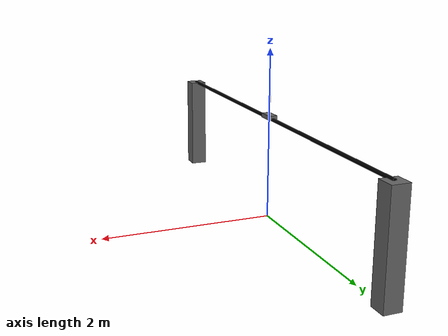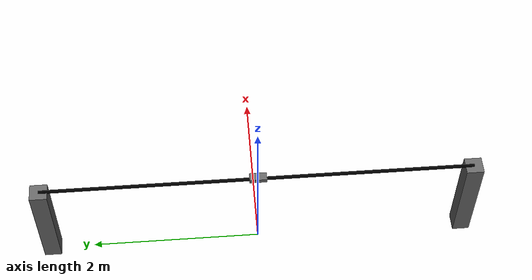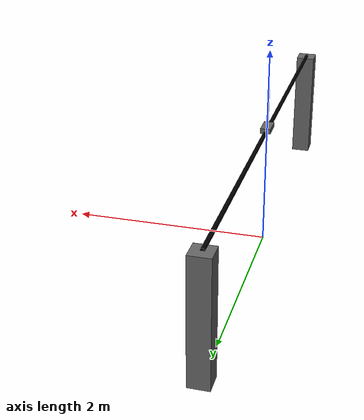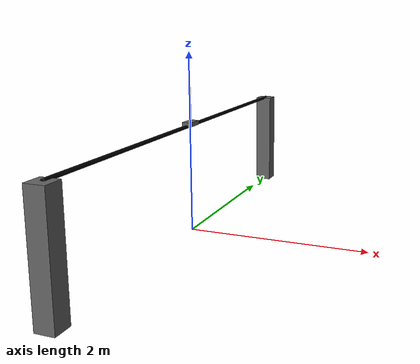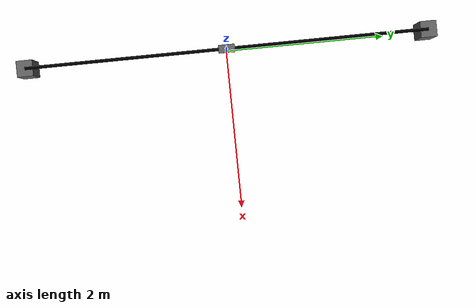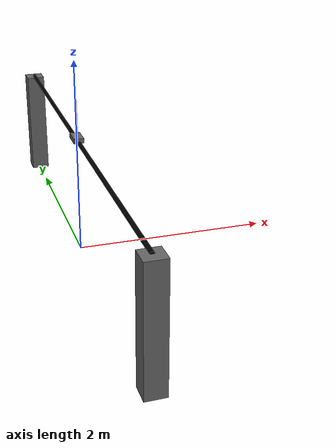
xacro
<?xml version="1.0" encoding="UTF-8"?>
<robot name="cart_pole" xmlns:xacro="http://www.ros.org/wiki/xacro">

  <!-- =================== Properties =================== -->
  <xacro:property name="rail_height" value="1.2"/>
  <xacro:property name="rail_length" value="5.0"/>
  <xacro:property name="rail_radius" value="0.02"/>
  <xacro:property name="rail_mass" value="15.0"/>

  <xacro:property name="cart_size_x" value="0.1"/>
  <xacro:property name="cart_size_y" value="0.2"/>
  <xacro:property name="cart_size_z" value="0.05"/>
  <xacro:property name="cart_mass" value="2.0"/>

  <xacro:property name="pole_length" value="0.35"/>
  <xacro:property name="pole_radius" value="0.01"/>
  <xacro:property name="pole_mass" value="0.1"/>
  <xacro:property name="theta_0" value="0.0"/>

  <xacro:property name="post_mass" value="5.0"/>
  <xacro:property name="post_height" value="1.2"/>
  <xacro:property name="post_size" value="0.2"/>

  <xacro:property name="black" value="0 0 0 1"/>
  <xacro:property name="grey" value="0.4 0.4 0.4 1"/>
  <xacro:property name="red" value="1 0 0 1"/>

  <!-- =================== Inertia Macros =================== -->
  <xacro:macro name="box_inertia" params="mass dimx dimy dimz xyz rpy">
    <inertial>
      <origin xyz="${xyz}" rpy="${rpy}"/>
      <mass value="${mass}"/>
      <xacro:property name="ixx" value="${(1.0/12.0)*mass*(dimy*dimy + dimz*dimz)}"/>
      <xacro:property name="iyy" value="${(1.0/12.0)*mass*(dimx*dimx + dimz*dimz)}"/>
      <xacro:property name="izz" value="${(1.0/12.0)*mass*(dimx*dimx + dimy*dimy)}"/>
      <inertia ixx="${ixx}" ixy="0" ixz="0" iyy="${iyy}" iyz="0" izz="${izz}"/>
    </inertial>
  </xacro:macro>

  <xacro:macro name="cylinder_inertia" params="mass length radius xyz rpy">
    <inertial>
      <origin xyz="${xyz}" rpy="${rpy}"/>
      <mass value="${mass}"/>
      <xacro:property name="ixx" value="${(1.0/12.0)*mass*(3*radius*radius + length*length)}"/>
      <xacro:property name="iyy" value="${(1.0/12.0)*mass*(3*radius*radius + length*length)}"/>
      <xacro:property name="izz" value="${0.5*mass*radius*radius}"/>
      <inertia ixx="${ixx}" ixy="0" ixz="0" iyy="${iyy}" iyz="0" izz="${izz}"/>
    </inertial>
  </xacro:macro>

  <!-- =================== Visual Materials =================== -->
  <material name="black"><color rgba="${black}"/></material>
  <material name="grey"><color rgba="${grey}"/></material>
  <material name="red"><color rgba="${red}"/></material>

  <!-- =================== Links =================== -->

  <!-- World reference link -->
  <link name="world"/>

  <!-- Left post -->
  <link name="post1">
    <xacro:box_inertia mass="${post_mass}" dimx="${post_size}" dimy="${post_size}" dimz="${post_height}" xyz="0 0 ${post_height/2}" rpy="0 0 0"/>
    <visual>
      <geometry><box size="${post_size} ${post_size} ${post_height}"/></geometry>
      <origin xyz="0 0 ${post_height/2}" rpy="0 0 0"/>
      <material name="grey"/>
    </visual>
    <collision>
      <geometry><box size="${post_size} ${post_size} ${post_height}"/></geometry>
      <origin xyz="0 0 ${post_height/2}" rpy="0 0 0"/>
    </collision>
  </link>

  <!-- Right post -->
  <link name="post2">
    <xacro:box_inertia mass="${post_mass}" dimx="${post_size}" dimy="${post_size}" dimz="${post_height}" xyz="0 0 ${post_height/2}" rpy="0 0 0"/>
    <visual>
      <geometry><box size="${post_size} ${post_size} ${post_height}"/></geometry>
      <origin xyz="0 0 ${post_height/2}" rpy="0 0 0"/>
      <material name="grey"/>
    </visual>
    <collision>
      <geometry><box size="${post_size} ${post_size} ${post_height}"/></geometry>
      <origin xyz="0 0 ${post_height/2}" rpy="0 0 0"/>
    </collision>
  </link>

  <!-- The rail -->
  <link name="rail">
    <xacro:cylinder_inertia mass="${rail_mass}" length="${rail_length}" radius="${rail_radius}" xyz="0 0 0" rpy="${pi/2} 0 0"/>
    <visual>
      <geometry><cylinder length="${rail_length}" radius="${rail_radius}"/></geometry>
      <origin xyz="0 0 ${rail_height}" rpy="${pi/2} 0 0"/>
      <material name="black"/>
    </visual>
    <collision>
      <geometry><cylinder length="${rail_length}" radius="${rail_radius}"/></geometry>
      <origin xyz="0 0 ${rail_height}" rpy="${pi/2} 0 0"/>
    </collision>
  </link>

  <!-- The cart -->
  <link name="cart">
    <xacro:box_inertia mass="${cart_mass}" dimx="${cart_size_x}" dimy="${cart_size_y}" dimz="${cart_size_z}" xyz="0 0 0" rpy="0 0 0"/>
    <visual>
      <geometry><box size="${cart_size_x} ${cart_size_y} ${cart_size_z}"/></geometry>
      <origin xyz="0 0 ${rail_height}" rpy="0 0 0"/>
      <material name="grey"/>
    </visual>
    <collision>
      <geometry><box size="${cart_size_x} ${cart_size_y} ${cart_size_z}"/></geometry>
      <origin xyz="0 0 ${rail_height}" rpy="0 0 0"/>
    </collision>
  </link>

  <!-- The pole -->
  <link name="pole">
    <xacro:cylinder_inertia mass="${pole_mass}" length="${pole_length}" radius="${pole_radius}" xyz="0 0 0" rpy="0 0 0"/>
    <visual>
      <geometry><cylinder length="${pole_length}" radius="${pole_radius}"/></geometry>
      <origin xyz="0 0 ${rail_height + pole_length/2}" rpy="0 0 0"/>
      <material name="red"/>
    </visual>
    <collision>
      <geometry><cylinder length="${pole_length}" radius="${pole_radius}"/></geometry>
      <origin xyz="0 0 ${rail_height + pole_length/2}" rpy="0 0 0"/>
    </collision>
  </link>

  <!-- =================== Joints =================== -->

  <!-- Fix posts to world -->
  <joint name="world_to_post1" type="fixed">
    <parent link="world"/>
    <child link="post1"/>
    <origin xyz="0 -2.5 0" rpy="0 0 0"/>
  </joint>

  <joint name="world_to_post2" type="fixed">
    <parent link="world"/>
    <child link="post2"/>
    <origin xyz="0 2.5 0" rpy="0 0 0"/>
  </joint>

  <!-- Fix rail to post1 (anchors it) -->
  <joint name="post1_to_rail" type="fixed">
    <parent link="post1"/>
    <child link="rail"/>
    <origin xyz="0 2.5 0" rpy="0 0 0"/>
  </joint>

  <!-- Prismatic joint for cart movement -->
  <joint name="linear" type="prismatic">
    <parent link="rail"/>
    <child link="cart"/>
    <axis xyz="0 1 0"/>
    <origin xyz="0 0 ${rail_radius}" rpy="0 0 0"/>
    <limit lower="-${rail_length/2 - cart_size_y/2}" upper="${rail_length/2 - cart_size_y/2}" effort="2" velocity="1"/>
  </joint>

  <!-- Continuous joint for pole -->
  <joint name="pivot" type="continuous">
    <parent link="cart"/>
    <child link="pole"/>
    <axis xyz="1 0 0"/>
    <origin xyz="0 0 ${cart_size_z}" rpy="${theta_0} 0 0"/>
    <limit effort="50" velocity="15"/>
  </joint>
  <gazebo reference="post1">
    <material>Gazebo/DarkGrey</material>
  </gazebo>

  <gazebo reference="post2">
    <material>Gazebo/Green</material>
  </gazebo>

  <gazebo reference="cart">
    <material>Gazebo/Blue</material>
  </gazebo>

  <gazebo reference="pole">
    <material>Gazebo/Orange</material>
  </gazebo>

  <gazebo reference="Grey">
    <material>Gazebo/DarkGrey</material>
  </gazebo>

  <!-- =================== ROS2 Control =================== -->
  <ros2_control name="GazeboSystem" type="system">
    <hardware>
      <plugin>gazebo_ros2_control/GazeboSystem</plugin>
    </hardware>
    <joint name="linear">
      <command_interface name="effort"/>
      <state_interface name="position"/>
      <state_interface name="velocity"/>
      <state_interface name="effort"/>
    </joint>
    <joint name="pivot">
      <command_interface name="effort"/>
      <state_interface name="position"/>
      <state_interface name="velocity"/>
      <state_interface name="effort"/>
    </joint>
  </ros2_control>

  <!-- =================== Gazebo Plugin =================== -->
  <gazebo>
    <plugin name="gazebo_ros2_control" filename="libgazebo_ros2_control.so">
      <parameters>$(find cart_pole)/config/cartpole_controller.yaml</parameters>
    </plugin>
  </gazebo>

</robot>
